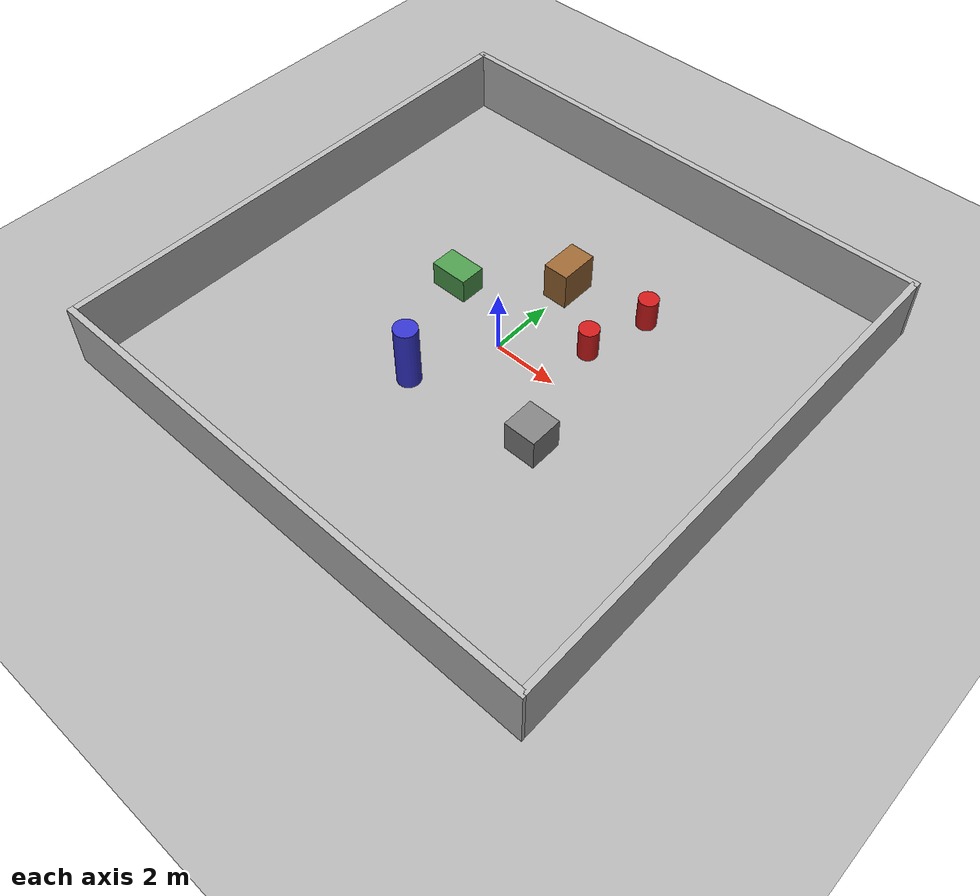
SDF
<?xml version="1.0" ?>
<sdf version="1.8">
  <world name="obstacle_rich">
    <physics name="1ms" type="ignored"><max_step_size>0.001</max_step_size><real_time_factor>1.0</real_time_factor></physics>
    <plugin filename="libignition-gazebo-physics-system.so" name="ignition::gazebo::systems::Physics"/>
    <plugin filename="libignition-gazebo-scene-broadcaster-system.so" name="ignition::gazebo::systems::SceneBroadcaster"/>
    <plugin filename="libignition-gazebo-user-commands-system.so" name="ignition::gazebo::systems::UserCommands"/>
    <plugin filename="libignition-gazebo-sensors-system.so" name="ignition::gazebo::systems::Sensors"><render_engine>ogre</render_engine></plugin>
    <plugin filename="libignition-gazebo-imu-system.so" name="ignition::gazebo::systems::Imu"/>

    <light type="directional" name="sun"><cast_shadows>true</cast_shadows><pose>0 0 10 0 0 0</pose><diffuse>0.8 0.8 0.8 1</diffuse><specular>0.2 0.2 0.2 1</specular><direction>-0.5 0.1 -0.9</direction></light>
    <model name="ground_plane"><static>true</static><link name="link"><collision name="c"><geometry><plane><normal>0 0 1</normal><size>40 40</size></plane></geometry></collision><visual name="v"><geometry><plane><normal>0 0 1</normal><size>40 40</size></plane></geometry><material><ambient>0.7 0.7 0.7 1</ambient><diffuse>0.7 0.7 0.7 1</diffuse></material></visual></link></model>

    <!-- Perimeter Boundary 16m x 16m -->
    <model name="wall_n"><static>true</static><pose>0 8 1 0 0 0</pose><link name="l"><collision name="c"><geometry><box><size>16.2 0.2 2</size></box></geometry></collision><visual name="v"><geometry><box><size>16.2 0.2 2</size></box></geometry></visual></link></model>
    <model name="wall_s"><static>true</static><pose>0 -8 1 0 0 0</pose><link name="l"><collision name="c"><geometry><box><size>16.2 0.2 2</size></box></geometry></collision><visual name="v"><geometry><box><size>16.2 0.2 2</size></box></geometry></visual></link></model>
    <model name="wall_e"><static>true</static><pose>8 0 1 0 0 0</pose><link name="l"><collision name="c"><geometry><box><size>0.2 16.0 2</size></box></geometry></collision><visual name="v"><geometry><box><size>0.2 16.0 2</size></box></geometry></visual></link></model>
    <model name="wall_w"><static>true</static><pose>-8 0 1 0 0 0</pose><link name="l"><collision name="c"><geometry><box><size>0.2 16.0 2</size></box></geometry></collision><visual name="v"><geometry><box><size>0.2 16.0 2</size></box></geometry></visual></link></model>

    <!-- Dense Clutter Grid -->
    <model name="barrel_1"><static>true</static><pose>2.0 1.5 0.5 0 0 0</pose><link name="l"><collision name="c"><geometry><cylinder><radius>0.3</radius><length>1.0</length></cylinder></geometry></collision><visual name="v"><geometry><cylinder><radius>0.3</radius><length>1.0</length></cylinder></geometry><material><ambient>0.8 0.1 0.1 1</ambient><diffuse>0.8 0.1 0.1 1</diffuse></material></visual></link></model>
    <model name="barrel_2"><static>true</static><pose>2.5 3.5 0.5 0 0 0</pose><link name="l"><collision name="c"><geometry><cylinder><radius>0.3</radius><length>1.0</length></cylinder></geometry></collision><visual name="v"><geometry><cylinder><radius>0.3</radius><length>1.0</length></cylinder></geometry><material><ambient>0.8 0.1 0.1 1</ambient><diffuse>0.8 0.1 0.1 1</diffuse></material></visual></link></model>
    <model name="box_stack_1"><static>true</static><pose>0.0 3.0 0.6 0 0 0</pose><link name="l"><collision name="c"><geometry><box><size>0.8 1.2 1.2</size></box></geometry></collision><visual name="v"><geometry><box><size>0.8 1.2 1.2</size></box></geometry><material><ambient>0.6 0.4 0.2 1</ambient><diffuse>0.6 0.4 0.2 1</diffuse></material></visual></link></model>
    <model name="pallet_obstacle_1"><static>true</static><pose>-2.5 1.0 0.4 0 0 0</pose><link name="l"><collision name="c"><geometry><box><size>1.2 0.8 0.8</size></box></geometry></collision><visual name="v"><geometry><box><size>1.2 0.8 0.8</size></box></geometry><material><ambient>0.3 0.6 0.3 1</ambient><diffuse>0.3 0.6 0.3 1</diffuse></material></visual></link></model>
    <model name="pillar_mid"><static>true</static><pose>-1.0 -2.5 1.0 0 0 0</pose><link name="l"><collision name="c"><geometry><cylinder><radius>0.35</radius><length>2.0</length></cylinder></geometry></collision><visual name="v"><geometry><cylinder><radius>0.35</radius><length>2.0</length></cylinder></geometry><material><ambient>0.2 0.2 0.8 1</ambient><diffuse>0.2 0.2 0.8 1</diffuse></material></visual></link></model>
    <model name="crate_2"><static>true</static><pose>3.0 -2.0 0.5 0 0 0</pose><link name="l"><collision name="c"><geometry><box><size>1.0 1.0 1.0</size></box></geometry></collision><visual name="v"><geometry><box><size>1.0 1.0 1.0</size></box></geometry><material><ambient>0.5 0.5 0.5 1</ambient><diffuse>0.5 0.5 0.5 1</diffuse></material></visual></link></model>
  </world>
</sdf>
